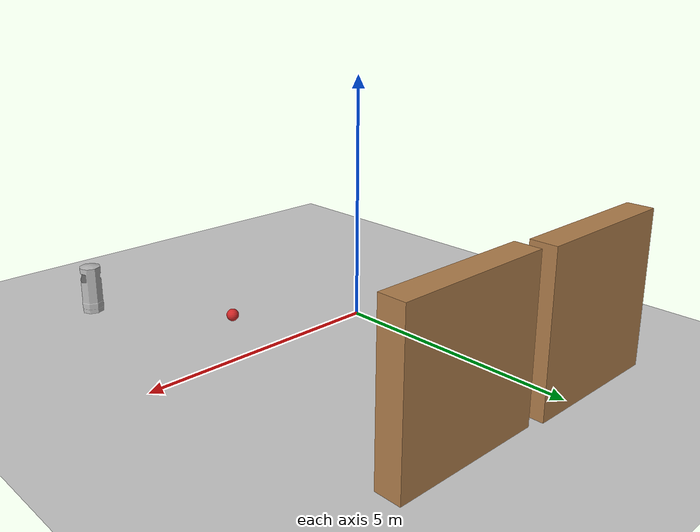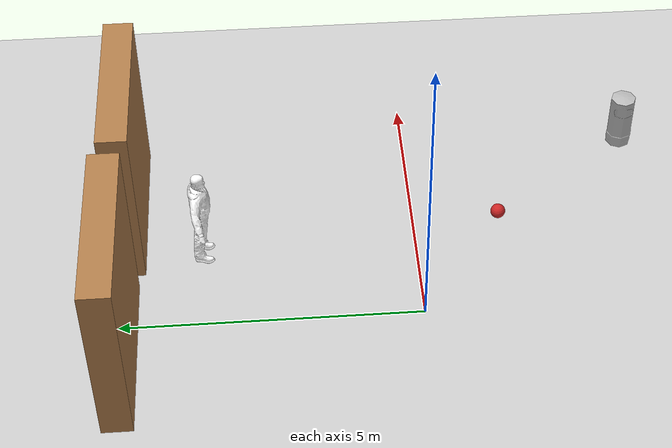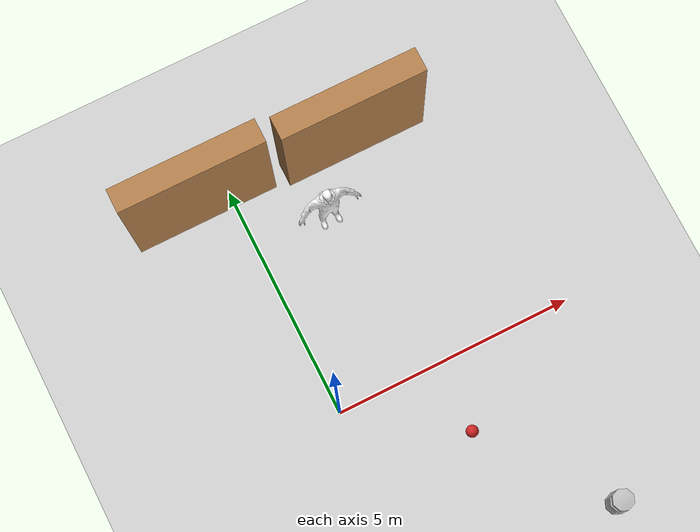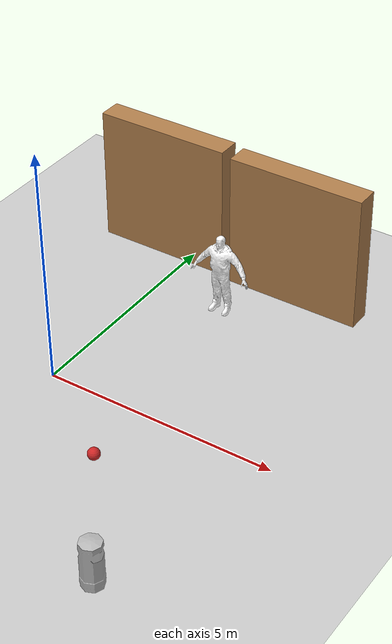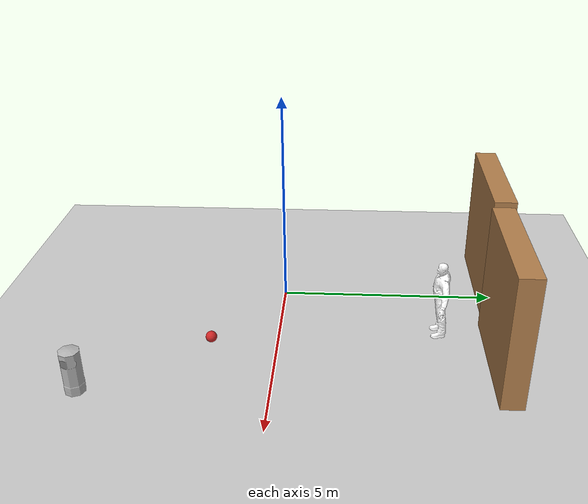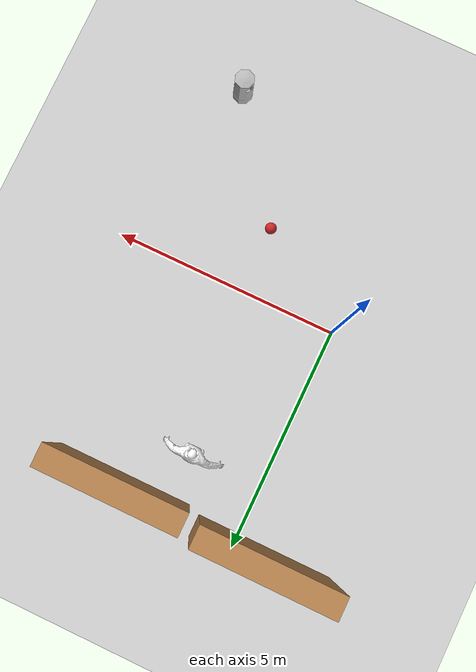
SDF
<sdf version="1.10">
 <world name="empty">
  <physics name="1ms" type="ignored">
   <max_step_size>0.001</max_step_size>
   <real_time_factor>1</real_time_factor>
   <real_time_update_rate>1000</real_time_update_rate>
  </physics>
  <plugin name="gz::sim::systems::Physics" filename="gz-sim-physics-system"/>
  <plugin name="gz::sim::systems::UserCommands" filename="gz-sim-user-commands-system"/>
  <plugin name="gz::sim::systems::SceneBroadcaster" filename="gz-sim-scene-broadcaster-system"/>
  <plugin name="gz::sim::systems::Contact" filename="gz-sim-contact-system"/>
  <plugin name="gz::sim::systems::Sensors" filename="gz-sim-sensors-system"/>
  <plugin name="gz::sim::systems::Imu" filename="gz-sim-imu-system"/>
  <plugin name="gz::sim::systems::NavSat" filename="gz-sim-navsat-system"/>
  <spherical_coordinates>
   <surface_model>EARTH_WGS84</surface_model>
   <world_frame_orientation>ENU</world_frame_orientation>
   <latitude_deg>44.403373000000002</latitude_deg>
   <longitude_deg>8.9481067999999997</longitude_deg>
   <elevation>0</elevation>
   <heading_deg>0</heading_deg>
  </spherical_coordinates>
  <gravity>0 0 -9.8000000000000007</gravity>
  <magnetic_field>5.5644999999999998e-06 2.2875799999999999e-05 -4.2388400000000002e-05</magnetic_field>
  <atmosphere type="adiabatic"/>
  <scene>
   <ambient>0.400000006 0.400000006 0.400000006 1</ambient>
   <background>0.699999988 0.699999988 0.699999988 1</background>
   <shadows>true</shadows>
  </scene>
  <model name="ground_plane">
   <static>true</static>
   <link name="link">
    <collision name="collision">
     <geometry><plane><normal>0 0 1</normal><size>100 100</size></plane></geometry>
    </collision>
    <visual name="visual">
     <geometry><plane><normal>0 0 1</normal><size>100 100</size></plane></geometry>
     <material>
      <ambient>0.800000012 0.800000012 0.800000012 1</ambient>
      <diffuse>0.800000012 0.800000012 0.800000012 1</diffuse>
      <specular>0.800000012 0.800000012 0.800000012 1</specular>
     </material>
    </visual>
    <inertial>
     <mass>1</mass>
     <inertia><ixx>1</ixx><ixy>0</ixy><ixz>0</ixz><iyy>1</iyy><iyz>0</iyz><izz>1</izz></inertia>
    </inertial>
   </link>
  </model>
  <include>
   <uri>file:///home/utente/gazebo_models/LitterBin</uri>
   <name>LitterBin</name>
   <pose>3.9582744548594153 -3.9721188454027208 0 0 0 0</pose>
  </include>
  <include>
   <uri>file:///home/utente/gazebo_models/brick_box_3x1x3</uri>
   <name>brick_box_3x1x3</name>
   <pose>-0.5910934474239351 4.9313380762175445 0 0 0 0</pose>
  </include>
  <include>
   <uri>file:///home/utente/gazebo_models/brick_box_3x1x3</uri>
   <name>brick_box_3x1x3_0</name>
   <pose>2.6666111475691654 4.8302343770614558 0 0 0 0</pose>
  </include>
  <include>
   <uri>file:///home/utente/gazebo_models/rescue_randy</uri>
   <name>rescue_randy</name>
   <pose>1.5776795095953009 3.6022001529965531 0 0 0 0</pose>
  </include>
  <include>
   <uri>file:///home/utente/gazebo_models/red_ball_10in</uri>
   <name>red_ball_10in</name>
   <pose>2.1253383405629087 -1.4911213403229726 0.12699999990200145 0 0 0</pose>
  </include>
  <light name="sun" type="directional">
   <pose>0 0 10 0 0 0</pose>
   <intensity>1</intensity>
   <direction>-0.5 0.10000000000000001 -0.90000000000000002</direction>
   <diffuse>0.800000012 0.800000012 0.800000012 1</diffuse>
   <specular>0.200000003 0.200000003 0.200000003 1</specular>
   <attenuation>
    <range>1000</range>
    <linear>0.01</linear>
    <constant>0.90000000000000002</constant>
    <quadratic>0.001</quadratic>
   </attenuation>
   <spot><inner_angle>0</inner_angle><outer_angle>0</outer_angle><falloff>0</falloff></spot>
  </light>
 </world>
</sdf>

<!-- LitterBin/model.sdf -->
<sdf version="1.6">
  <model name='LitterBin'>
    <static>true</static>
    <link name="body">
      <pose>0 0 0 0 0 0</pose>

        <visual name="visual">
          <geometry>
            <mesh><uri>model://LitterBin/meshes/Litter.obj</uri></mesh>
          </geometry>
        </visual>

        <collision name="collision">
          <geometry>
            <mesh><uri>model://LitterBin/meshes/Litter.obj</uri></mesh>
          </geometry>
        </collision>

    </link>
  </model>
</sdf>

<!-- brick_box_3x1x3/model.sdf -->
<sdf version="1.5">
  <model name="brick_box_3x1x3">
    <static>true</static>
    <link name="chassis">
      <pose>0 0 1.5 0 0 0</pose>
      <collision name="collision">
        <geometry>
          <box>
            <size>3.0 0.5 3.0</size>
          </box>
        </geometry>
      </collision>
      <visual name="visual">
        <geometry>
          <mesh>
            <uri>model://brick_box_3x1x3/meshes/simple_box.dae</uri>
            <scale>3.0 0.5 3.0</scale>
          </mesh>
        </geometry>
        <material>
          <diffuse>1.0 1.0 1.0</diffuse>
          <script>
            <uri>file://media/materials/scripts/gazebo.material</uri>
            <name>Gazebo/Wood</name>
          </script>
          <!-- PBR for Ignition, material scripts for gazebo classic-->
          <pbr>
            <metal>
              <albedo_map>model://brick_box_3x1x3/materials/textures/simple_box.png</albedo_map>
            </metal>
          </pbr>
        </material>
      </visual>
    </link>
  </model>
</sdf>

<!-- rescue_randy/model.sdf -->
<sdf version="1.6">
  <model name="rescue_randy">
    <static>true</static>
    <link name="link">
      <collision name="collision">
        <geometry>
          <mesh>
            <uri>model://rescue_randy/meshes/rescue_randy.dae</uri>
          </mesh>
        </geometry>
      </collision>
      <visual name="visual">
        <geometry>
          <mesh>
            <uri>model://rescue_randy/meshes/rescue_randy.dae</uri>
          </mesh>
        </geometry>
        <material>
          <diffuse>1.0 1.0 1.0</diffuse>
          <specular>1.0 1.0 1.0</specular>
          <pbr>
            <metal>
              <albedo_map>model://rescue_randy/materials/textures/rescue_randy_albedo.png</albedo_map>
              <normal_map>model://rescue_randy/materials/textures/rescue_randy_normal.png</normal_map>
              <metalness_map>model://rescue_randy/materials/textures/rescue_randy_metalness.png</metalness_map>
              <roughness_map>model://rescue_randy/materials/textures/rescue_randy_roughness.png</roughness_map>
            </metal>
          </pbr>
          <!-- fallback to classic if no PBR support-->
          <script>
            <uri>model://rescue_randy/materials/scripts</uri>
            <uri>model://rescue_randy/materials/textures</uri>
            <name>RescueRandy/Diffuse</name>
          </script>
        </material>
        <plugin
          filename="ignition-gazebo-thermal-system"
          name="ignition::gazebo::systems::Thermal">
          <heat_signature>materials/textures/RescueRandy_Thermal.png</heat_signature>
          <max_temp>310</max_temp>
        </plugin>
      </visual>
    </link>
  </model>
</sdf>

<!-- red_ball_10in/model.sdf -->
<sdf version="1.5">
  <model name="red_ball_10in">
    <pose>0 0 0.127 0 0 0</pose>
    <link name="link">
      <inertial>
        <mass>0.213</mass>
        <inertia>
          <ixx>0.003226667</ixx>
          <ixy>0</ixy>
          <ixz>0</ixz>
          <iyy>0.003226667</iyy>
          <iyz>0</iyz>
          <izz>0.003226667</izz>
        </inertia>
      </inertial>
      <visual name="visual">
        <geometry>
          <sphere>
            <radius>0.127</radius>
          </sphere>
        </geometry>
        <material>
          <script>
            <uri>file://media/materials/scripts/gazebo.material</uri>
            <name>Gazebo/Red</name>
          </script>
          <emissive>1 0 0 1</emissive>
        </material>
      </visual>
      <collision name="collision">
        <geometry>
          <sphere>
            <radius>0.127</radius>
          </sphere>
        </geometry>
        <surface>
          <bounce>
            <restitution_coefficient>0.15937</restitution_coefficient>
            <threshold>0</threshold>
          </bounce>
          <contact>
            <ode>
              <max_vel>100</max_vel>
              <min_depth>0.001</min_depth>
            </ode>
          </contact>
        </surface>
      </collision>
    </link>
  </model>
</sdf>
